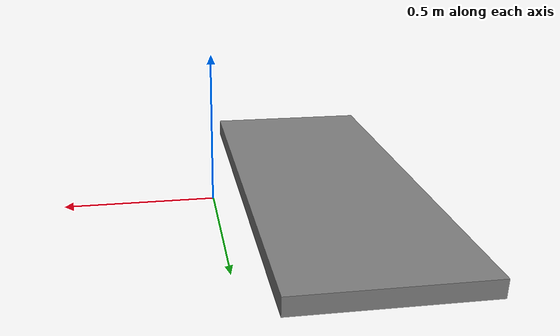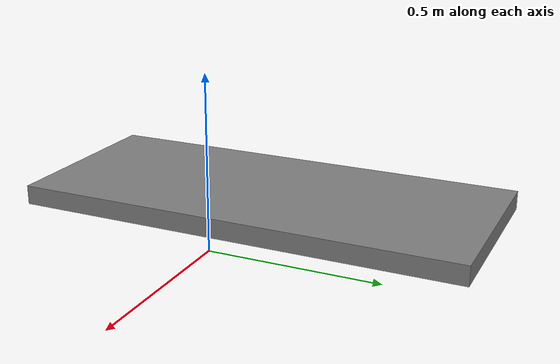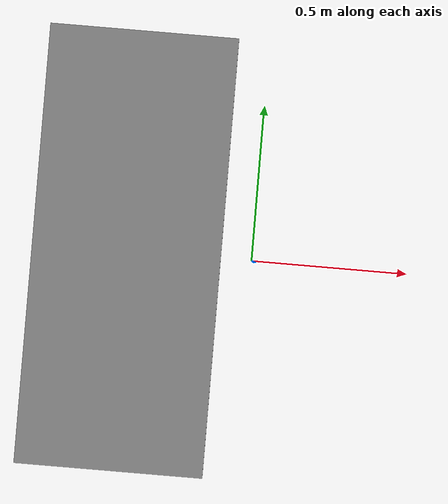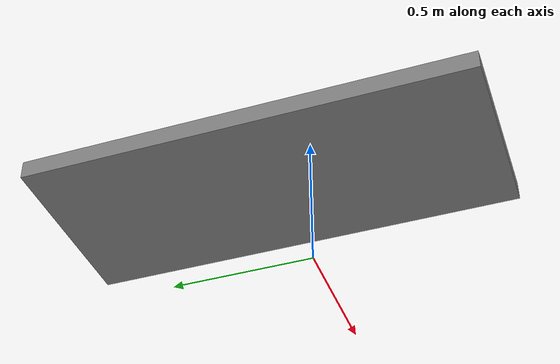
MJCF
<mujoco model="platform_box">
    <worldbody>
        <body name="platform_box" pos="0.0 0.0 0.0" quat="1 0 0 0">
            <geom name="platform_box" pos="-0.4 0 0.02" size="0.3 0.7 0.03" rgba="0.5 0.5 0.5 1.0" type="box" mass="0.01" friction="0.3 0.001 0.0001" priority="1"/>

        </body>
    </worldbody>
</mujoco>
